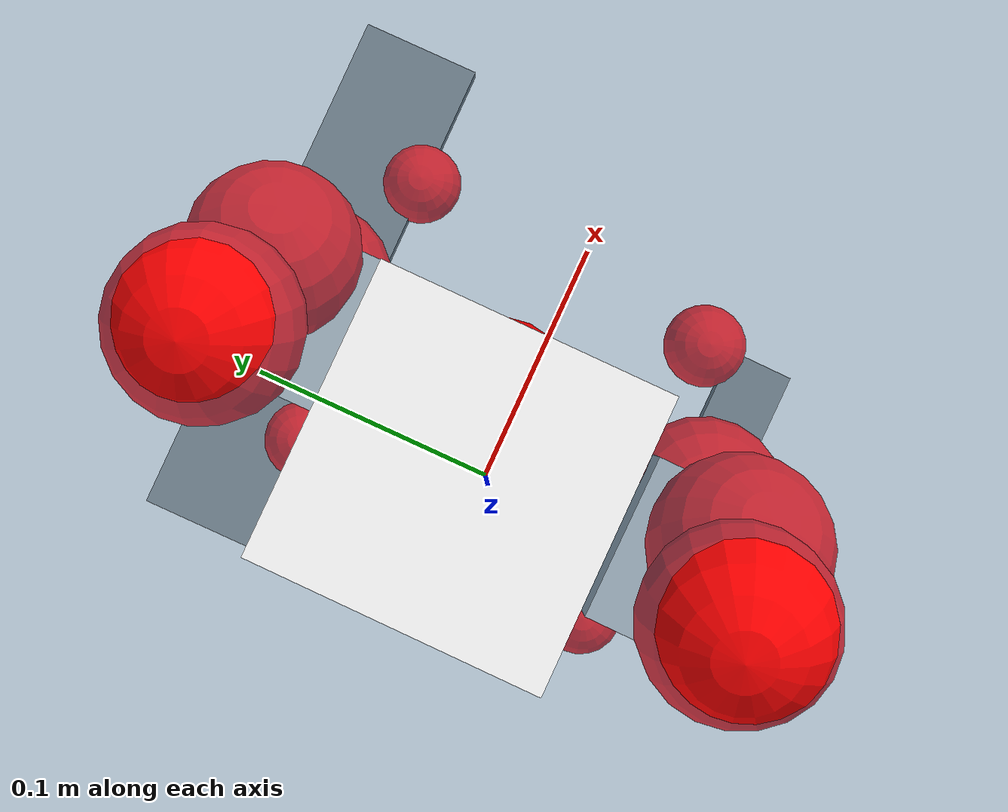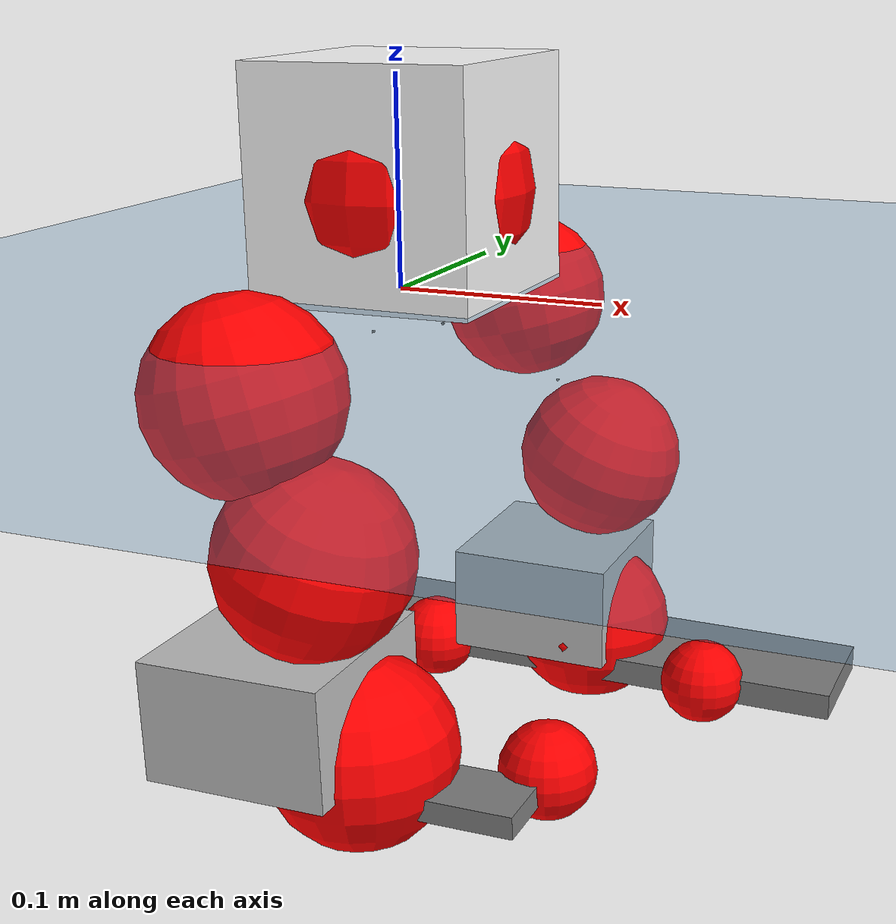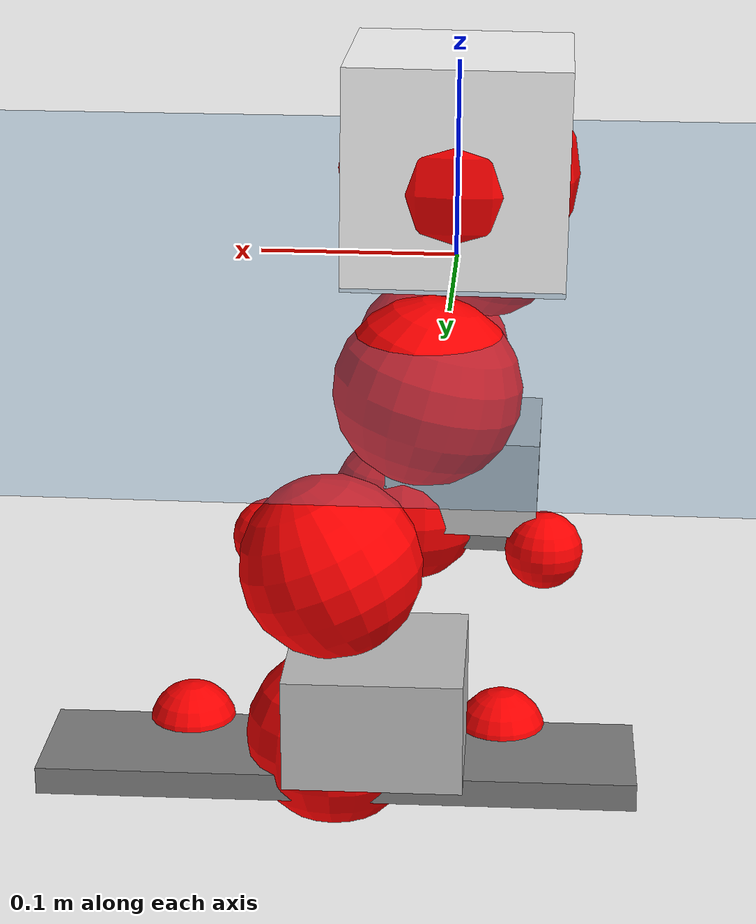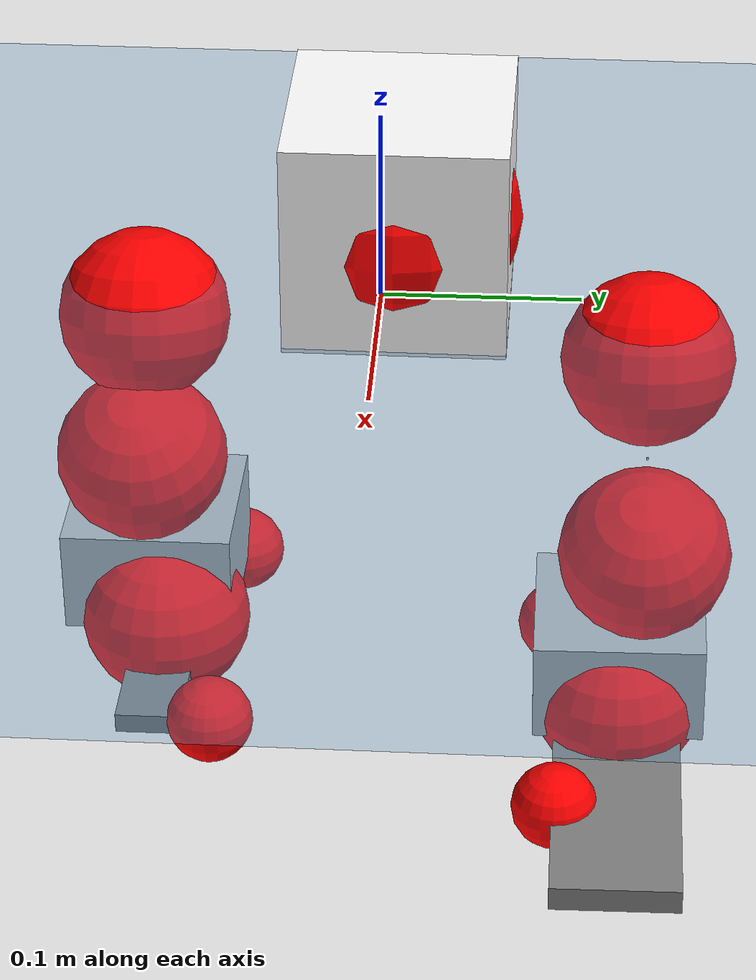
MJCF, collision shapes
<mujoco model="pi_12dof_release_v1">
  <compiler angle="radian" assetdir="assets" balanceinertia="true" inertiafromgeom="false"/>

  <option timestep="0.005" density="1.2" viscosity="2e-05"/>

  <size nkey="1"/>

  <visual>
    <quality shadowsize="8192"/>
    <map shadowclip="0.5"/>
  </visual>

  <default>
    <default class="/">
      <joint armature="0.01" damping="0.01" frictionloss="0.01"/>
      <geom contype="0" conaffinity="0" group="1" solref="-1000 -80"/>
      <site size="0.01 0.005 0.005" group="5"/>
      <general forcelimited="true" biastype="affine" gainprm="20" biasprm="0 -20 -0.5"/>
      <default class="foot">
        <geom size="0.0845 0.036 0.005" type="box" condim="6" group="4" priority="1" friction="0.9 0.2 0.2" solimp="0.015 1 0.005"/>
      </default>
      <default class="reward_collision_sphere">
        <geom group="5" rgba="1 0 0 1"/>
      </default>
    </default>
  </default>

  <asset>
    <texture type="skybox" colorspace="auto" name="//unnamed_texture_0" builtin="gradient" rgb1="0.95 0.95 0.95" rgb2="0.95 0.95 0.95" width="100" height="600"/>
    <texture type="2d" colorspace="auto" name="texplane" builtin="checker" rgb1="0.345 0.575 0.748" rgb2="0.345 0.575 0.748" markrgb="1 1 1" width="512" height="512"/>
    <material name="MatPlane" class="/" texture="texplane" texuniform="true" texrepeat="2 2" specular="0.9"/>
    <mesh name="baselink_1" class="/" file="baselink_1.STL"/>
    <mesh name="r_hip_pitch_link" class="/" file="r_hip_pitch_link.STL"/>
    <mesh name="r_hip_roll_link" class="/" file="r_hip_roll_link.STL"/>
    <mesh name="r_thigh_link" class="/" file="r_thigh_link.STL"/>
    <mesh name="r_calf_link" class="/" file="r_calf_link.STL"/>
    <mesh name="r_ankle_pitch_link" class="/" file="r_ankle_pitch_link.STL"/>
    <mesh name="r_ankle_roll_link" class="/" file="r_ankle_roll_link.STL"/>
    <mesh name="l_hip_pitch_link" class="/" file="l_hip_pitch_link.STL"/>
    <mesh name="l_hip_roll_link" class="/" file="l_hip_roll_link.STL"/>
    <mesh name="l_thigh_link" class="/" file="l_thigh_link.STL"/>
    <mesh name="l_calf_link" class="/" file="l_calf_link.STL"/>
    <mesh name="l_ankle_pitch_link" class="/" file="l_ankle_pitch_link.STL"/>
    <mesh name="l_ankle_roll_link" class="/" file="l_ankle_roll_link.STL"/>
  </asset>

  <worldbody>
    <geom name="floor" class="/" size="100 100 0.125" type="plane" group="0" material="MatPlane"/>
    <light name="toplight_shadow" class="/" pos="0 0 5" dir="0.0990148 0.0990148 -0.990148" type="directional" ambient="0.04 0.04 0.04" diffuse="0.55 0.55 0.55" specular="0.12 0.12 0.12"/>
    <light name="toplight_fill" class="/" pos="0 0 5" dir="0.0990148 0.0990148 -0.990148" type="directional" castshadow="false" ambient="0.04 0.04 0.04" diffuse="0.3 0.3 0.3" specular="0.08 0.08 0.08"/>
    <body name="trunk" pos="-0.000263478 0.00961262 0.00510487" quat="0.999988 0.000688558 -0.00373035 -0.00300128">
      <inertial pos="0.0110252 0.0144651 0.0136104" quat="0.717228 -0.0144573 -0.00192246 0.696686" mass="2.92296" diaginertia="0.0275756 0.0982126 0.000289041"/>
      <joint name="//unnamed_joint_0" type="free"/>
      <geom name="//unnamed_geom_1" class="/" type="mesh" density="0" rgba="1 1 1 1" mesh="baselink_1"/>
      <geom name="//unnamed_geom_2" class="/" size="0.0549687 0.0549687 0.0549687" pos="0 0 0.0468581" type="box" rgba="1 1 1 1"/>
      <geom name="//unnamed_geom_3" class="reward_collision_sphere" size="0.0604656" pos="0 0 0.0410008"/>
      <site name="imu" class="/" pos="0.00881099 -0.00451414 -0.00442184" size="0.0109937"/>
      <camera name="track" class="/" pos="0 -3.12168 0" quat="0.707107 0.707107 0 0" mode="trackcom"/>
      <camera name="ego_camera" class="/" pos="0.0863668 0 0.105431" quat="-0.5 -0.5 0.5 0.5"/>
      <body name="r_hip_pitch_link" pos="-0.0020546 -0.034943 -0.0206245" quat="0.992209 -5.23087e-05 -0.124585 -0.000281448">
        <inertial pos="0.00333425 -0.0744763 0.000634262" quat="0.0376487 0.725909 -0.0738299 0.68278" mass="0.469038" diaginertia="0.000212762 0.000944638 5.51612e-06"/>
        <joint name="r_hip_pitch_joint" class="/" pos="0 0 0" axis="-0.00263263 -0.999988 0.0040544" range="-1.93058 1.08284" armature="0.0117455" damping="0" frictionloss="0.0034681"/>
        <geom name="//unnamed_geom_4" class="/" type="mesh" density="0" rgba="0.75294 0.75294 0.75294 1" mesh="r_hip_pitch_link"/>
        <geom name="//unnamed_geom_5" class="/" size="0.000549687 0.000549687 0.000549687" type="box" rgba="0.75294 0.75294 0.75294 1"/>
        <body name="r_hip_roll_link" pos="-0.0113301 -0.0965417 -0.00463695" quat="0.999972 0.00372092 -0.00436226 -0.00484081">
          <inertial pos="-0.00185912 -0.014644 -0.0326396" quat="0.68464 -0.0723141 -0.0790162 0.720968" mass="0.468637" diaginertia="0.000789929 0.00212691 8.84375e-06"/>
          <joint name="r_hip_roll_joint" class="/" pos="0 0 0" axis="-0.999266 -0.0283963 -0.0256965" range="-0.127853 0.514698" armature="0.00427904" damping="0" frictionloss="0.0119349"/>
          <geom name="//unnamed_geom_6" class="/" type="mesh" density="0" rgba="0.75294 0.75294 0.75294 1" mesh="r_hip_roll_link"/>
          <geom name="//unnamed_geom_7" class="/" size="0.000549687 0.000549687 0.000549687" type="box" rgba="0.75294 0.75294 0.75294 1"/>
          <geom name="//unnamed_geom_8" class="reward_collision_sphere" size="0.043975"/>
          <body name="r_thigh_link" pos="-0.00376356 -0.00348349 -0.0392882" quat="1 -0.000498668 -0.000221714 2.10557e-05">
            <inertial pos="0.0127892 0.0109233 -0.0164179" quat="0.736161 0.676193 -0.0287698 0.00138425" mass="0.155284" diaginertia="0.000285572 0.000811867 4.54664e-06"/>
            <joint name="r_thigh_joint" class="/" pos="0 0 0" axis="0.0505068 0.0343352 -0.998133" stiffness="0.0693893" range="-0.0138405 0.883588" armature="0.00392251" damping="0.0830688" frictionloss="0.00321713"/>
            <geom name="//unnamed_geom_9" class="/" type="mesh" density="0" rgba="0.75294 0.75294 0.75294 1" mesh="r_thigh_link"/>
            <geom name="//unnamed_geom_10" class="/" size="0.000549687 0.000549687 0.000549687" type="box" rgba="0.75294 0.75294 0.75294 1"/>
            <body name="r_calf_link" pos="0.0148876 0.00289694 -0.0333379" quat="0.948053 0.00128656 0.318108 -0.000612439">
              <inertial pos="0.0021585 -0.00803194 -0.0340362" quat="0.997526 -0.0169716 -0.0253648 0.0633336" mass="1.16481" diaginertia="0.00804547 0.0324497 1.12023e-05"/>
              <joint name="r_calf_joint" class="/" pos="0 0 0" axis="-0.0117196 -0.997058 0.0757525" stiffness="0.0116751" range="-1.49215 0.708753" armature="0.010789" damping="0.0334" frictionloss="0.00368842"/>
              <geom name="//unnamed_geom_11" class="/" type="mesh" density="0" rgba="0.75294 0.75294 0.75294 1" mesh="r_calf_link"/>
              <geom name="//unnamed_geom_12" class="/" size="0.000549687 0.000549687 0.000549687" type="box" rgba="0.75294 0.75294 0.75294 1"/>
              <geom name="//unnamed_geom_13" class="reward_collision_sphere" size="0.043975"/>
              <body name="r_ankle_pitch_link" pos="0.00636342 0.00182919 -0.0692688" quat="0.980158 -0.000561709 -0.198219 7.82771e-05">
                <inertial pos="-0.00217992 0.0147088 -0.013508" quat="0.0165714 0.707142 0.0225645 0.706517" mass="0.216658" diaginertia="0.000688472 0.00203731 8.18408e-06"/>
                <joint name="r_ankle_pitch_joint" class="/" pos="0 0 0" axis="0.0146313 -0.999809 -0.0129517" stiffness="0.00358302" range="-1.10353 0.771369" armature="0.00494232" damping="0" frictionloss="0.00394669"/>
                <geom name="//unnamed_geom_14" class="/" type="mesh" density="0" rgba="0.75294 0.75294 0.75294 1" mesh="r_ankle_pitch_link"/>
                <geom name="//unnamed_geom_15" class="/" size="0.0428756 0.043975 0.0274844" type="box" rgba="0.75294 0.75294 0.75294 1"/>
                <body name="r_ankle_roll_link" pos="0.0902635 0.00814104 -0.0129058" quat="0.999998 0.000375006 0.00152606 0.00099264">
                  <inertial pos="-0.0184096 -0.00914096 -0.00958283" quat="0.564282 0.423307 0.409311 0.578672" mass="0.55967" diaginertia="0.00200803 0.00679094 1.76384e-05"/>
                  <joint name="r_ankle_roll_joint" class="/" pos="0 0 0" axis="-0.996811 -0.0294695 0.0741644" range="-0.452254 -0.0759022" armature="0.011852" damping="0" frictionloss="0.00814558"/>
                  <geom name="//unnamed_geom_16" class="/" type="mesh" density="0" rgba="0.75294 0.75294 0.75294 1" mesh="r_ankle_roll_link"/>
                  <geom name="//unnamed_geom_17" class="/" type="mesh" rgba="0.75294 0.75294 0.75294 1" mesh="r_ankle_roll_link"/>
                  <geom name="right_foot" class="foot" size="0.0795429 0.0168259 0.00517284" pos="-0.0587295 0 -0.0257719"/>
                  <geom name="//unnamed_geom_19" class="reward_collision_sphere" size="0.043975" pos="-0.0575779 0 -0.0117145"/>
                  <geom name="//unnamed_geom_20" class="reward_collision_sphere" size="0.0219875" pos="0.0172734 0.0312168 -0.023429"/>
                  <geom name="//unnamed_geom_21" class="reward_collision_sphere" size="0.0219875" pos="-0.138187 0.0312168 -0.023429"/>
                  <site name="right_foot" class="foot" pos="-0.0587295 0 -0.0257719" size="0.0109937"/>
                </body>
              </body>
            </body>
          </body>
        </body>
      </body>
      <body name="l_hip_pitch_link" pos="0.00325148 0.0288624 -0.0300852" quat="0.992186 0.000155119 -0.124768 -1.49395e-05">
        <inertial pos="-0.00240658 0.0886472 -0.00903739" quat="-0.031942 0.717987 0.0222154 0.694968" mass="0.664075" diaginertia="0.000291859 0.00114744 6.69784e-06"/>
        <joint name="l_hip_pitch_joint" class="/" pos="0 0 0" axis="-0.00357965 0.999614 -0.0275505" range="-1.28365 1.50452" armature="0.0121316" damping="0.00809564" frictionloss="0.0106707"/>
        <geom name="//unnamed_geom_22" class="/" type="mesh" density="0" rgba="0.75294 0.75294 0.75294 1" mesh="l_hip_pitch_link"/>
        <geom name="//unnamed_geom_23" class="/" size="0.000549687 0.000549687 0.000549687" type="box" rgba="0.75294 0.75294 0.75294 1"/>
        <body name="l_hip_roll_link" pos="0.00315996 0.0961005 -0.0044073" quat="0.999977 0.00598656 0.00326271 -0.00036285">
          <inertial pos="-0.002607 -0.0153667 -0.0411709" quat="0.664512 -0.0520786 -0.086218 0.740458" mass="0.60216" diaginertia="0.000734102 0.00227389 7.3546e-06"/>
          <joint name="l_hip_roll_joint" class="/" pos="0 0 0" axis="-0.998753 0.0488128 -0.0105077" range="-0.496066 0.00731797" armature="0.00278914" damping="0" frictionloss="0.0155269"/>
          <geom name="//unnamed_geom_24" class="/" type="mesh" density="0" rgba="0.75294 0.75294 0.75294 1" mesh="l_hip_roll_link"/>
          <geom name="//unnamed_geom_25" class="/" size="0.000549687 0.000549687 0.000549687" type="box" rgba="0.75294 0.75294 0.75294 1"/>
          <geom name="//unnamed_geom_26" class="reward_collision_sphere" size="0.043975"/>
          <body name="l_thigh_link" pos="0.00677383 0.00113557 -0.0507067" quat="0.999992 -0.00368523 0.00141825 0.000566438">
            <inertial pos="0.000523228 -0.0135925 -0.0264729" quat="0.672012 0.740535 0.00142101 0.00252958" mass="0.153452" diaginertia="0.000275146 0.000956002 4.38211e-06"/>
            <joint name="l_thigh_joint" class="/" pos="0 0 0" axis="0.00310482 -0.00047752 -0.999995" range="-0.709502 0.209559" armature="0.0158826" damping="0.0721221" frictionloss="0.00804927"/>
            <geom name="//unnamed_geom_27" class="/" type="mesh" density="0" rgba="0.75294 0.75294 0.75294 1" mesh="l_thigh_link"/>
            <geom name="//unnamed_geom_28" class="/" size="0.000549687 0.000549687 0.000549687" type="box" rgba="0.75294 0.75294 0.75294 1"/>
            <body name="l_calf_link" pos="0.0146074 -1.7488e-05 -0.0455894" quat="0.945469 0.00107387 0.325689 0.00370954">
              <inertial pos="-0.000571072 0.0110934 -0.0386377" quat="0.999987 0.00437702 -0.00057829 0.00260548" mass="1.16792" diaginertia="0.00786813 0.0332316 1.05818e-05"/>
              <joint name="l_calf_joint" class="/" pos="0 0 0" axis="0.0112737 0.999148 0.0396987" stiffness="0.0767143" range="-0.892226 1.76368" armature="0.0144489" damping="0.011092" frictionloss="0.00839806"/>
              <geom name="//unnamed_geom_29" class="/" type="mesh" density="0" rgba="0.75294 0.75294 0.75294 1" mesh="l_calf_link"/>
              <geom name="//unnamed_geom_30" class="/" size="0.000549687 0.000549687 0.000549687" type="box" rgba="0.75294 0.75294 0.75294 1"/>
              <geom name="//unnamed_geom_31" class="reward_collision_sphere" size="0.043975"/>
              <body name="l_ankle_pitch_link" pos="0.00997261 -0.0110377 -0.0766395" quat="0.979517 0.00160376 -0.201353 0.000238428">
                <inertial pos="0.00616096 0.00949784 0.00134509" quat="-0.0138825 0.707765 0.00869557 0.706258" mass="0.20846" diaginertia="0.000606673 0.00207204 8.78128e-06"/>
                <joint name="l_ankle_pitch_joint" class="/" pos="0 0 0" axis="0.00483259 0.999977 0.00476528" range="-0.458007 1.3095" armature="0.0174683" damping="0" frictionloss="0.0159438"/>
                <geom name="//unnamed_geom_32" class="/" type="mesh" density="0" rgba="0.75294 0.75294 0.75294 1" mesh="l_ankle_pitch_link"/>
                <geom name="//unnamed_geom_33" class="/" size="0.0428756 0.043975 0.0274844" type="box" rgba="0.75294 0.75294 0.75294 1"/>
                <body name="l_ankle_roll_link" pos="0.0781608 -0.000388644 -0.00698712" quat="1 -0.000765757 0.000336322 0.000219734">
                  <inertial pos="-0.0190129 -0.00213019 -0.0104665" quat="0.563365 0.426719 0.433226 0.559326" mass="0.61467" diaginertia="0.00218399 0.00878429 2.02073e-05"/>
                  <joint name="l_ankle_roll_joint" class="/" pos="0 0 0" axis="-0.999967 -0.00703954 0.00411307" range="-0.443127 0.165891" armature="0.0123322" damping="0.081334" frictionloss="0.0142212"/>
                  <geom name="//unnamed_geom_34" class="/" type="mesh" density="0" rgba="0.75294 0.75294 0.75294 1" mesh="l_ankle_roll_link"/>
                  <geom name="//unnamed_geom_35" class="/" type="mesh" rgba="0.75294 0.75294 0.75294 1" mesh="l_ankle_roll_link"/>
                  <geom name="left_foot" class="foot" size="0.144651 0.0327435 0.00672942" pos="-0.0587295 0 -0.0257719"/>
                  <geom name="//unnamed_geom_37" class="reward_collision_sphere" size="0.043975" pos="-0.0575779 0 -0.0117145"/>
                  <geom name="//unnamed_geom_38" class="reward_collision_sphere" size="0.0219875" pos="0.0172734 -0.0312168 -0.023429"/>
                  <geom name="//unnamed_geom_39" class="reward_collision_sphere" size="0.0219875" pos="-0.138187 -0.0312168 -0.023429"/>
                  <site name="left_foot" class="foot" pos="-0.0587295 0 -0.0257719" size="0.0109937"/>
                </body>
              </body>
            </body>
          </body>
        </body>
      </body>
    </body>
  </worldbody>

  <contact>
    <pair class="/" geom1="floor" geom2="right_foot" name="//unnamed_contact_1"/>
    <pair class="/" geom1="floor" geom2="left_foot" name="//unnamed_contact_0"/>
  </contact>

  <actuator>
    <general name="r_hip_pitch_joint" class="/" joint="r_hip_pitch_joint" forcerange="-28.686 28.686" gainprm="25.9305" biasprm="0 -25.9305 -0.4824"/>
    <general name="r_hip_roll_joint" class="/" joint="r_hip_roll_joint" forcerange="-10.138 10.138" gainprm="25.9305" biasprm="0 -25.9305 -0.4824"/>
    <general name="r_thigh_joint" class="/" joint="r_thigh_joint" forcerange="-24.026 24.026" gainprm="25.9305" biasprm="0 -25.9305 -0.4824"/>
    <general name="r_calf_joint" class="/" joint="r_calf_joint" forcerange="-21.9977 21.9977" gainprm="25.9305" biasprm="0 -25.9305 -0.4824"/>
    <general name="r_ankle_pitch_joint" class="/" joint="r_ankle_pitch_joint" forcerange="-23.1012 23.1012" gainprm="25.9305" biasprm="0 -25.9305 -0.4824"/>
    <general name="r_ankle_roll_joint" class="/" joint="r_ankle_roll_joint" forcerange="-13.634 13.634" gainprm="25.9305" biasprm="0 -25.9305 -0.4824"/>
    <general name="l_hip_pitch_joint" class="/" joint="l_hip_pitch_joint" forcerange="-16.9132 16.9132" gainprm="25.9305" biasprm="0 -25.9305 -0.4824"/>
    <general name="l_hip_roll_joint" class="/" joint="l_hip_roll_joint" forcerange="-22.2591 22.2591" gainprm="25.9305" biasprm="0 -25.9305 -0.4824"/>
    <general name="l_thigh_joint" class="/" joint="l_thigh_joint" forcerange="-22.5198 22.5198" gainprm="25.9305" biasprm="0 -25.9305 -0.4824"/>
    <general name="l_calf_joint" class="/" joint="l_calf_joint" forcerange="-29.7519 29.7519" gainprm="25.9305" biasprm="0 -25.9305 -0.4824"/>
    <general name="l_ankle_pitch_joint" class="/" joint="l_ankle_pitch_joint" forcerange="-23.4198 23.4198" gainprm="25.9305" biasprm="0 -25.9305 -0.4824"/>
    <general name="l_ankle_roll_joint" class="/" joint="l_ankle_roll_joint" forcerange="-32.1536 32.1536" gainprm="25.9305" biasprm="0 -25.9305 -0.4824"/>
  </actuator>

  <sensor>
    <gyro site="imu" name="imu_angular_velocity"/>
    <velocimeter site="imu" name="imu_linear_velocity"/>
    <framelinvel objtype="site" objname="left_foot" name="left_foot_global_linear_velocity"/>
    <framelinvel objtype="site" objname="right_foot" name="right_foot_global_linear_velocity"/>
  </sensor>

  <keyframe>
    <key name="home" qpos="0 0 0.291 1 0 0 0 0.4 0 0 -0.8 0.4 0 -0.4 0 0 0.8 -0.4 0"/>
  </keyframe>
</mujoco>
